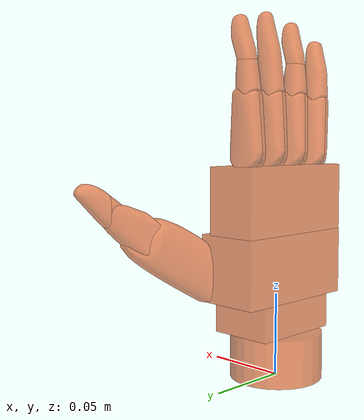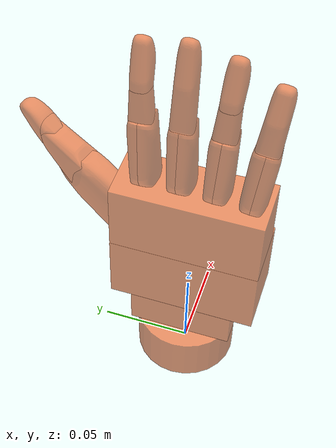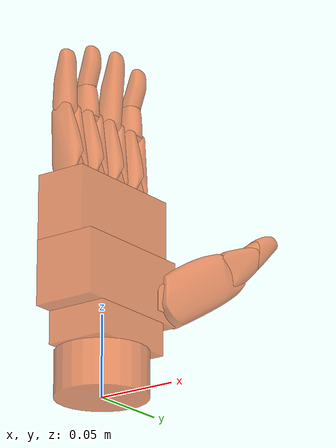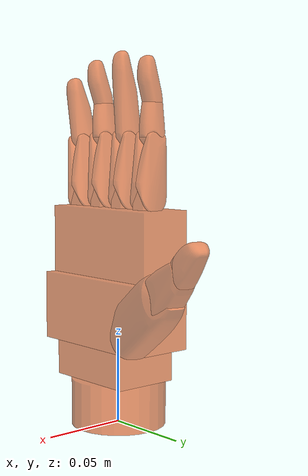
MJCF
<mujoco model="inspire_hand_right">
  <compiler angle="radian" autolimits="true" />
  <option gravity="0 0 0" timestep="0.001" />
  <visual>
    <global offwidth="3840" offheight="2160" />
  </visual>
  <asset>
    <mesh name="right_thumb_proximal_base_collision000" content_type="model/obj" file="meshes/collision/right_thumb_proximal_base_collision000.obj" />
    <mesh name="right_thumb_proximal_base_collision001" content_type="model/obj" file="meshes/collision/right_thumb_proximal_base_collision001.obj" />
    <mesh name="right_thumb_proximal_collision000" content_type="model/obj" file="meshes/collision/right_thumb_proximal_collision000.obj" />
    <mesh name="right_thumb_intermediate_collision000" content_type="model/obj" file="meshes/collision/right_thumb_intermediate_collision000.obj" />
    <mesh name="right_thumb_distal_collision000" content_type="model/obj" file="meshes/collision/right_thumb_distal_collision000.obj" />
    <mesh name="right_thumb_distal_collision001" content_type="model/obj" file="meshes/collision/right_thumb_distal_collision001.obj" />
    <mesh name="right_index_proximal_collision000" content_type="model/obj" file="meshes/collision/right_index_proximal_collision000.obj" />
    <mesh name="right_index_proximal_collision001" content_type="model/obj" file="meshes/collision/right_index_proximal_collision001.obj" />
    <mesh name="right_index_intermediate_collision000" content_type="model/obj" file="meshes/collision/right_index_intermediate_collision000.obj" />
    <mesh name="right_index_intermediate_collision001" content_type="model/obj" file="meshes/collision/right_index_intermediate_collision001.obj" />
    <mesh name="right_index_intermediate_collision002" content_type="model/obj" file="meshes/collision/right_index_intermediate_collision002.obj" />
    <mesh name="right_middle_intermediate_collision000" content_type="model/obj" file="meshes/collision/right_middle_intermediate_collision000.obj" />
    <mesh name="right_pinky_intermediate_collision000" content_type="model/obj" file="meshes/collision/right_pinky_intermediate_collision000.obj" />
    <texture type="skybox" builtin="gradient" rgb1="1 1 1" rgb2="1 1 1" width="32" height="512" />
  </asset>
  <worldbody>
    <light pos="0 0 5" dir="0 0 -1" directional="true" />
    <body name="hand_root">
      <body name="hand_base_link" quat="9.38189e-07 -9.38183e-07 -0.707105 0.707109">
        <inertial pos="-0.0025264 -0.066047 0.0019598" quat="0.993005 -0.113528 -0.0210604 0.0246792" mass="0.14143" diaginertia="0.000122991 8.41186e-05 7.61951e-05" />
        <geom size="0.028 0.0139" pos="0 -0.0136 0" quat="0.707109 0.707105 0 0" type="cylinder" group="1" rgba="0.9 0.35 0.1 0.65" />
        <geom size="0.01955 0.0101 0.0287" pos="-0.0032 -0.038 0" type="box" group="1" rgba="0.9 0.35 0.1 0.65" />
        <geom size="0.01955 0.02 0.0407" pos="-0.0032 -0.0682 0" type="box" group="1" rgba="0.9 0.35 0.1 0.65" />
        <geom size="0.0161 0.02 0.0407" pos="0 -0.1081 0" type="box" group="1" rgba="0.9 0.35 0.1 0.65" />
        <geom size="0.00625 0.00555 0.00445" pos="-0.0016 -0.134 0.0309" type="box" group="1" rgba="0.9 0.35 0.1 0.65" />
        <geom size="0.00625 0.00555 0.00445" pos="-0.0016 -0.134 0.0118" type="box" group="1" rgba="0.9 0.35 0.1 0.65" />
        <geom size="0.00625 0.00555 0.00445" pos="-0.0016 -0.134 -0.007" type="box" group="1" rgba="0.9 0.35 0.1 0.65" />
        <geom size="0.00625 0.00555 0.00445" pos="-0.0016 -0.134 -0.0262" type="box" group="1" rgba="0.9 0.35 0.1 0.65" />
        <body name="thumb_proximal_base" pos="-0.01696 -0.0691 -0.02045" quat="0.499998 0.5 -0.5 0.500002">
          <inertial pos="-0.0048064 0.0009382 -0.00757" quat="0.515015 0.680854 0.408023 0.323596" mass="0.0018869" diaginertia="8.66026e-08 6.8732e-08 4.94194e-08" />
          <joint name="thumb_proximal_yaw_joint" pos="0 0 0" axis="0 0 -1" range="0 1.308" actuatorfrcrange="-1 1" damping="0.1" armature="0.0002" frictionloss="0.0" />
          <geom name="thumb_proximal_base_collision_part000" type="mesh" mesh="right_thumb_proximal_base_collision000" group="1" rgba="0.9 0.35 0.1 0.65" />
          <geom name="thumb_proximal_base_collision_part001" type="mesh" mesh="right_thumb_proximal_base_collision001" group="1" rgba="0.9 0.35 0.1 0.65" />
          <body name="thumb_proximal" pos="-0.0088099 0.010892 -0.00925" quat="0.0996843 0.0996847 0.700046 0.700044">
            <inertial pos="0.021932 0.012785 -0.0080386" quat="-0.254474 0.660716 0.251893 0.659733" mass="0.0066075" diaginertia="2.78601e-06 2.43933e-06 8.64566e-07" />
            <joint name="thumb_proximal_pitch_joint" pos="0 0 0" axis="0 0 1" range="0 0.6" actuatorfrcrange="-1 1" damping="0.1" armature="0.0002" frictionloss="0.0" />
            <geom type="mesh" mesh="right_thumb_proximal_collision000" group="1" rgba="0.9 0.35 0.1 0.65" />
            <body name="thumb_intermediate" pos="0.04407 0.034553 -0.0008">
              <inertial pos="0.0095544 -0.0016282 -0.0071997" quat="0.636718 0.307389 -0.636802 0.307548" mass="0.0037847" diaginertia="4.6531e-07 4.48089e-07 2.45661e-07" />
              <joint name="thumb_intermediate_joint" pos="0 0 0" axis="0 0 1" range="0 0.8" actuatorfrcrange="-1 1" damping="0.0" armature="0.0" frictionloss="0.0" />
              <geom type="mesh" mesh="right_thumb_intermediate_collision000" group="1" rgba="0.9 0.35 0.1 0.65" />
              <body name="thumb_distal" pos="0.020248 0.010156 -0.0012">
                <inertial pos="0.0092888 0.0049529 -0.0060033" quat="-0.266294 0.655967 0.262806 0.655537" mass="0.0033441" diaginertia="2.0026e-07 1.95247e-07 8.1593e-08" />
                <joint name="thumb_distal_joint" pos="0 0 0" axis="0 0 1" range="0 0.4" actuatorfrcrange="-1 1" damping="0.0" armature="0.0" frictionloss="0.0" />
                <geom name="thumb_distal_collision_part000" type="mesh" mesh="right_thumb_distal_collision000" group="1" rgba="0.9 0.35 0.1 0.65" />
                <geom name="thumb_distal_collision_part001" type="mesh" mesh="right_thumb_distal_collision001" group="1" rgba="0.9 0.35 0.1 0.65" />
                <body name="thumb_tip" pos="0.0202 0.014 -0.006" />
              </body>
            </body>
          </body>
        </body>
        <body name="index_proximal" pos="0.00028533 -0.13653 -0.032268" quat="0.0174454 -0.999848 0 0">
          <inertial pos="0.0012259 0.011942 -0.0060001" quat="0.50867 0.49121 -0.508643 0.491172" mass="0.0042403" diaginertia="6.9398e-07 6.62871e-07 2.10909e-07" />
          <joint name="index_proximal_joint" pos="0 0 0" axis="0 0 1" range="0 1.47" actuatorfrcrange="-1 1" damping="0.1" armature="0.0002" frictionloss="0.0" />
          <geom name="index_proximal_collision_part000" type="mesh" mesh="right_index_proximal_collision000" group="1" rgba="0.9 0.35 0.1 0.65" />
          <geom name="index_proximal_collision_part001" type="mesh" mesh="right_index_proximal_collision001" group="1" rgba="0.9 0.35 0.1 0.65" />
          <body name="index_intermediate" pos="-0.0026138 0.032026 -0.001">
            <inertial pos="0.0019697 0.019589 -0.005" quat="0.466773 0.531152 -0.466773 0.531153" mass="0.0045683" diaginertia="7.8179e-07 7.72465e-07 8.47212e-08" />
            <joint name="index_intermediate_joint" pos="0 0 0" axis="0 0 1" range="-0.04545 1.56" actuatorfrcrange="-1 1" damping="0.0" armature="0.0" frictionloss="0.0" />
            <geom name="index_intermediate_collision_part000" type="mesh" mesh="right_index_intermediate_collision000" group="1" rgba="0.9 0.35 0.1 0.65" />
            <geom name="index_intermediate_collision_part001" type="mesh" mesh="right_index_intermediate_collision001" group="1" rgba="0.9 0.35 0.1 0.65" />
            <geom name="index_intermediate_collision_part002" type="mesh" mesh="right_index_intermediate_collision002" group="1" rgba="0.9 0.35 0.1 0.65" />
            <body name="index_tip" pos="-0.0008 0.045 -0.005" />
          </body>
        </body>
        <body name="middle_proximal" pos="0.00028533 -0.1371 -0.01295" quat="-3.67321e-06 -1 0 0">
          <inertial pos="0.001297 0.011934 -0.0060001" quat="0.510131 0.489693 -0.510105 0.489653" mass="0.0042403" diaginertia="6.9397e-07 6.62865e-07 2.10915e-07" />
          <joint name="middle_proximal_joint" pos="0 0 0" axis="0 0 1" range="0 1.47" actuatorfrcrange="-1 1" damping="0.1" armature="0.0002" frictionloss="0.0" />
          <geom name="middle_proximal_collision_part000" type="mesh" mesh="right_index_proximal_collision000" group="1" rgba="0.9 0.35 0.1 0.65" />
          <geom name="middle_proximal_collision_part001" type="mesh" mesh="right_index_proximal_collision001" group="1" rgba="0.9 0.35 0.1 0.65" />
          <body name="middle_intermediate" pos="-0.0024229 0.032041 -0.001">
            <inertial pos="0.001921 0.020796 -0.005" quat="0.466148 0.531627 -0.466229 0.531705" mass="0.0050396" diaginertia="9.8384e-07 9.73279e-07 9.14014e-08" />
            <joint name="middle_intermediate_joint" pos="0 0 0" axis="0 0 1" range="-0.04545 1.56" actuatorfrcrange="-1 1" damping="0.0" armature="0.0" frictionloss="0.0" />
            <geom type="mesh" mesh="right_middle_intermediate_collision000" group="1" rgba="0.9 0.35 0.1 0.65" />
            <body name="middle_tip" pos="-0.001 0.048 -0.005" />
          </body>
        </body>
        <body name="ring_proximal" pos="0.00028533 -0.13691 0.0062872" quat="0.0261933 0.999657 0 0">
          <inertial pos="0.001297 0.011934 -0.0060002" quat="0.510129 0.489691 -0.510107 0.489654" mass="0.0042403" diaginertia="6.9397e-07 6.62865e-07 2.10915e-07" />
          <joint name="ring_proximal_joint" pos="0 0 0" axis="0 0 1" range="0 1.47" actuatorfrcrange="-1 1" damping="0.1" armature="0.0002" frictionloss="0.0" />
          <geom name="ring_proximal_collision_part000" type="mesh" mesh="right_index_proximal_collision000" group="1" rgba="0.9 0.35 0.1 0.65" />
          <geom name="ring_proximal_collision_part001" type="mesh" mesh="right_index_proximal_collision001" group="1" rgba="0.9 0.35 0.1 0.65" />
          <body name="ring_intermediate" pos="-0.0024229 0.032041 -0.001">
            <inertial pos="0.0021753 0.019567 -0.005" quat="0.469554 0.528695 -0.469554 0.528695" mass="0.0045683" diaginertia="7.8177e-07 7.72448e-07 8.4722e-08" />
            <joint name="ring_intermediate_joint" pos="0 0 0" axis="0 0 1" range="-0.04545 1.56" actuatorfrcrange="-1 1" damping="0.0" armature="0.0" frictionloss="0.0" />
            <geom name="ring_intermediate_collision_part000" type="mesh" mesh="right_index_intermediate_collision000" group="1" rgba="0.9 0.35 0.1 0.65" />
            <geom name="ring_intermediate_collision_part001" type="mesh" mesh="right_index_intermediate_collision001" group="1" rgba="0.9 0.35 0.1 0.65" />
            <geom name="ring_intermediate_collision_part002" type="mesh" mesh="right_index_intermediate_collision002" group="1" rgba="0.9 0.35 0.1 0.65" />
            <body name="ring_tip" pos="-0.0008 0.045 -0.005" />
          </body>
        </body>
        <body name="pinky_proximal" pos="0.00028533 -0.13571 0.025488" quat="0.0523224 0.99863 0 0">
          <inertial pos="0.001297 0.011934 -0.0060001" quat="0.51013 0.489693 -0.510106 0.489653" mass="0.0042403" diaginertia="6.9397e-07 6.62865e-07 2.10915e-07" />
          <joint name="pinky_proximal_joint" pos="0 0 0" axis="0 0 1" range="0 1.47" actuatorfrcrange="-1 1" damping="0.1" armature="0.0002" frictionloss="0.0" />
          <geom name="pinky_proximal_collision_part000" type="mesh" mesh="right_index_proximal_collision000" group="1" rgba="0.9 0.35 0.1 0.65" />
          <geom name="pinky_proximal_collision_part001" type="mesh" mesh="right_index_proximal_collision001" group="1" rgba="0.9 0.35 0.1 0.65" />
          <body name="pinky_intermediate" pos="-0.0024229 0.032041 -0.001">
            <inertial pos="0.0024748 0.016203 -0.0050031" quat="0.47398 0.528862 -0.469291 0.524799" mass="0.0035996" diaginertia="4.4867e-07 4.43723e-07 6.56538e-08" />
            <joint name="pinky_intermediate_joint" pos="0 0 0" axis="0 0 1" range="-0.04545 1.56" actuatorfrcrange="-1 1" damping="0.0" armature="0.0" frictionloss="0.0" />
            <geom type="mesh" mesh="right_pinky_intermediate_collision000" group="1" rgba="0.9 0.35 0.1 0.65" />
            <body name="pinky_tip" pos="-0.0008 0.037 -0.005" />
          </body>
        </body>
      </body>
    </body>
  </worldbody>
  <contact>
    <exclude name="ex_hand_base_link_thumb_proximal_base" body1="hand_base_link" body2="thumb_proximal_base" />
    <exclude name="ex_thumb_proximal_base_thumb_proximal" body1="thumb_proximal_base" body2="thumb_proximal" />
    <exclude name="ex_thumb_proximal_thumb_intermediate" body1="thumb_proximal" body2="thumb_intermediate" />
    <exclude name="ex_thumb_intermediate_thumb_distal" body1="thumb_intermediate" body2="thumb_distal" />
    <exclude name="ex_thumb_distal_thumb_tip" body1="thumb_distal" body2="thumb_tip" />
    <exclude name="ex_hand_base_link_index_proximal" body1="hand_base_link" body2="index_proximal" />
    <exclude name="ex_index_proximal_index_intermediate" body1="index_proximal" body2="index_intermediate" />
    <exclude name="ex_index_intermediate_index_tip" body1="index_intermediate" body2="index_tip" />
    <exclude name="ex_hand_base_link_middle_proximal" body1="hand_base_link" body2="middle_proximal" />
    <exclude name="ex_middle_proximal_middle_intermediate" body1="middle_proximal" body2="middle_intermediate" />
    <exclude name="ex_middle_intermediate_middle_tip" body1="middle_intermediate" body2="middle_tip" />
    <exclude name="ex_hand_base_link_ring_proximal" body1="hand_base_link" body2="ring_proximal" />
    <exclude name="ex_ring_proximal_ring_intermediate" body1="ring_proximal" body2="ring_intermediate" />
    <exclude name="ex_ring_intermediate_ring_tip" body1="ring_intermediate" body2="ring_tip" />
    <exclude name="ex_hand_base_link_pinky_proximal" body1="hand_base_link" body2="pinky_proximal" />
    <exclude name="ex_pinky_proximal_pinky_intermediate" body1="pinky_proximal" body2="pinky_intermediate" />
    <exclude name="ex_pinky_intermediate_pinky_tip" body1="pinky_intermediate" body2="pinky_tip" />
    <exclude name="ex_hand_base_link_thumb_proximal" body1="hand_base_link" body2="thumb_proximal" />
  </contact>
  <equality>
    <joint name="thumb_intermediate_joint_mimic" joint1="thumb_intermediate_joint" joint2="thumb_proximal_pitch_joint" polycoef="0 1.334 0 0 0" solref="0.002 1" solimp="0.9 0.99 0.001" />
    <joint name="thumb_distal_joint_mimic" joint1="thumb_distal_joint" joint2="thumb_proximal_pitch_joint" polycoef="0 0.667 0 0 0" solref="0.002 1" solimp="0.9 0.99 0.001" />
    <joint name="index_intermediate_joint_mimic" joint1="index_intermediate_joint" joint2="index_proximal_joint" polycoef="-0.04545 1.06399 0 0 0" solref="0.002 1" solimp="0.9 0.99 0.001" />
    <joint name="middle_intermediate_joint_mimic" joint1="middle_intermediate_joint" joint2="middle_proximal_joint" polycoef="-0.04545 1.06399 0 0 0" solref="0.002 1" solimp="0.9 0.99 0.001" />
    <joint name="ring_intermediate_joint_mimic" joint1="ring_intermediate_joint" joint2="ring_proximal_joint" polycoef="-0.04545 1.06399 0 0 0" solref="0.002 1" solimp="0.9 0.99 0.001" />
    <joint name="pinky_intermediate_joint_mimic" joint1="pinky_intermediate_joint" joint2="pinky_proximal_joint" polycoef="-0.04545 1.06399 0 0 0" solref="0.002 1" solimp="0.9 0.99 0.001" />
  </equality>
  <actuator>
    <position name="thumb_proximal_yaw_joint_actuator" joint="thumb_proximal_yaw_joint" kp="1" forcerange="-1 1" ctrlrange="0.0 1.308" />
    <position name="thumb_proximal_pitch_joint_actuator" joint="thumb_proximal_pitch_joint" kp="1" forcerange="-1 1" ctrlrange="0 0.6" />
    <position name="index_proximal_joint_actuator" joint="index_proximal_joint" kp="1" forcerange="-1 1" ctrlrange="0 1.47" />
    <position name="middle_proximal_joint_actuator" joint="middle_proximal_joint" kp="1" forcerange="-1 1" ctrlrange="0 1.47" />
    <position name="ring_proximal_joint_actuator" joint="ring_proximal_joint" kp="1" forcerange="-1 1" ctrlrange="0 1.47" />
    <position name="pinky_proximal_joint_actuator" joint="pinky_proximal_joint" kp="1" forcerange="-1 1" ctrlrange="0 1.47" />
  </actuator>
</mujoco>
